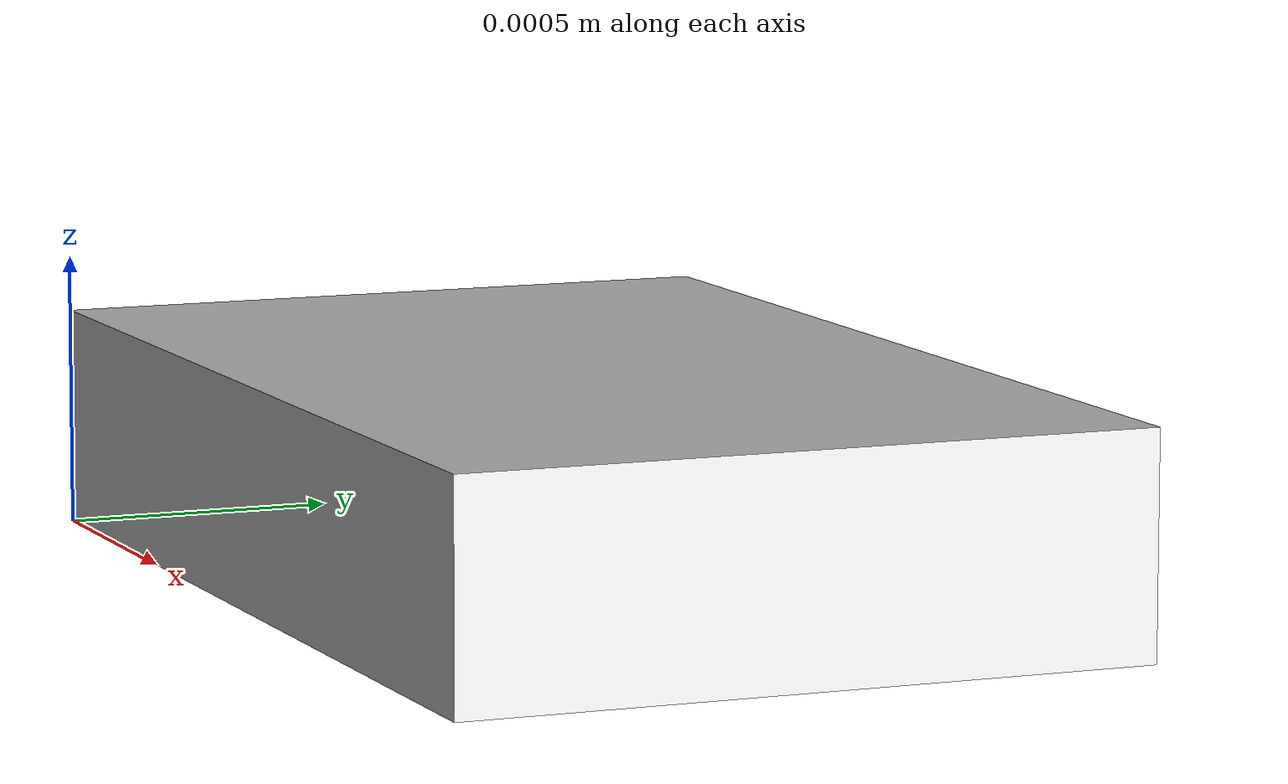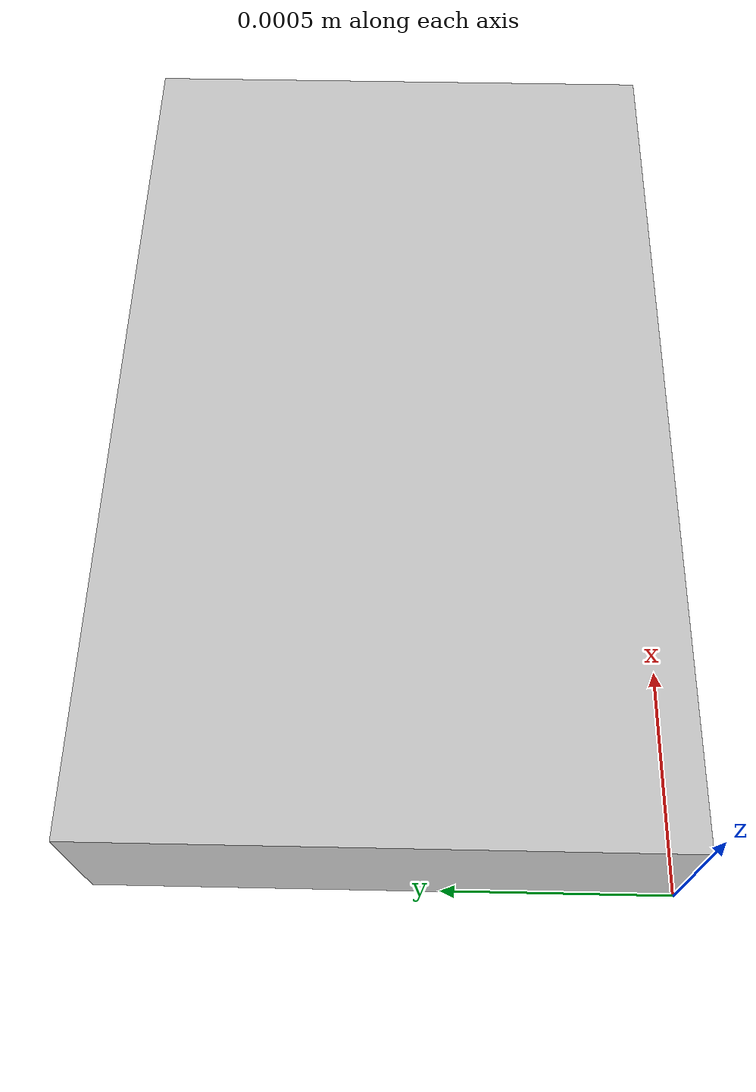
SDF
<?xml version="1.0" ?>
<sdf version="1.5">
  <model name="cap0805">
    <static>true</static>
    <link name="link">
      <inertial>
  	<pose>0.001 0 0 0 0 0</pose>
        <mass>0.001</mass>
        <inertia>
          <ixx>0.000166667</ixx>
          <iyy>0.000166667</iyy>
          <izz>0.000166667</izz>
        </inertia>
      </inertial>
      <collision name="collision">
        <geometry>
          <mesh>
            <uri>model://cap0805/meshes/cap.dae</uri>
          </mesh>
        </geometry>
      </collision>
      <visual name="visual">
        <geometry>
          <mesh>
            <uri>model://cap0805/meshes/cap.dae</uri>
          </mesh>
        </geometry>
      </visual>
    </link>
  </model>
</sdf>
